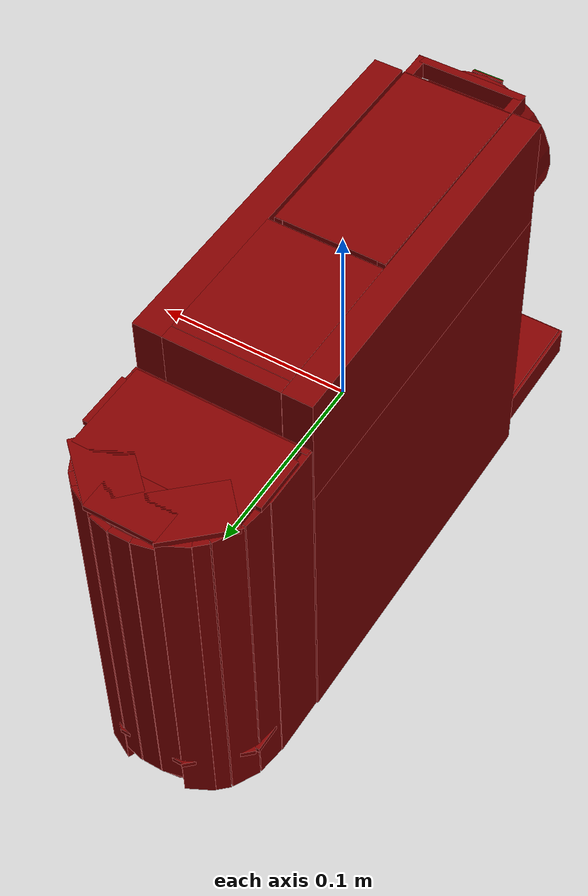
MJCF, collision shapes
<?xml version='1.0' encoding='UTF-8'?>
<mujoco model="model">
  <compiler angle="radian"/>
  <asset>
    <mesh file="visuals/Body001.obj" name="Body001_vis"/>
    <mesh file="visuals/Button001.obj" name="Button001_vis"/>
    <mesh file="visuals/Button002.obj" name="Button002_vis"/>
    <mesh file="visuals/Container001_Clear.obj" name="Container001_Clear_vis"/>
    <mesh file="visuals/Lid001.obj" name="Lid001_vis"/>
    <mesh file="visuals/Lid002.obj" name="Lid002_vis"/>
    <mesh file="visuals/Lid003.obj" name="Lid003_vis"/>
    <texture file="visuals/T_BC001.png" name="Body001_material" type="2d"/>
    <material name="Body001_material" rgba="1 1 1 1.0" texture="Body001_material" shininess="0.1" specular="2"/>
    <texture file="visuals/T_BC001.png" name="Button001_material" type="2d"/>
    <material name="Button001_material" rgba="1 1 1 1.0" texture="Button001_material" shininess="-0.9999998807907104" specular="0.7"/>
    <texture file="visuals/T_BC001.png" name="Button002_material" type="2d"/>
    <material name="Button002_material" rgba="1 1 1 1.0" texture="Button002_material" shininess="-0.9999998807907104" specular="0.7"/>
    <texture file="visuals/T_BC001.png" name="Container001_Clear_material" type="2d"/>
    <material name="Container001_Clear_material" rgba="1 1 1 0.06721784174442291" texture="Container001_Clear_material" shininess="0.5" specular="0.7"/>
    <texture file="visuals/T_BC001.png" name="Lid002_material" type="2d"/>
    <material name="Lid002_material" rgba="1 1 1 1.0" texture="Lid002_material" shininess="-0.9999998807907104" specular="0.7"/>
    <texture file="visuals/T_BC001.png" name="Lid001_material" type="2d"/>
    <material name="Lid001_material" rgba="1 1 1 1.0" texture="Lid001_material" shininess="-0.9999998807907104" specular="0.7"/>
    <texture file="visuals/T_BC001.png" name="Lid003_material" type="2d"/>
    <material name="Lid003_material" rgba="1 1 1 1.0" texture="Lid003_material" shininess="-0.9999998807907104" specular="0.7"/>
  </asset>
  <default>
    <default class="visual">
      <geom conaffinity="0" contype="0" group="1" type="mesh"/>
    </default>
    <default class="collision">
      <geom group="0" rgba="0.5 0 0 0.5"/>
    </default>
    <default class="spawn">
      <geom group="0" rgba="1 1 1 0.5" contype="0" conaffinity="0"/>
      <site group="0" rgba="1 1 1 0.5"/>
    </default>
    <default class="region">
      <geom group="1" conaffinity="0" contype="0" rgba="0 1 0 0"/>
    </default>
  </default>
  <worldbody>
    <body>
      <body name="object">
        <geom class="collision" type="box" pos="-0.00011250562965869904 -0.13045035302639008 0.032257333397865295" size="0.007772875018417835 0.0002824229886755347 0.007679379545152187" quat="1.0 0.0 0.0 0.0" name="start_button_2" rgba="0.0 0.5 0 0.5"/>
        <geom class="collision" type="box" pos="0.00012830746709369123 -0.1310804784297943 0.0891018807888031" size="0.007596283685415983 0.00023092639457900077 0.0075049130246043205" quat="1.0 0.0 0.0 0.0" name="start_button_1" rgba="0.0 0.5 0 0.5"/>
        <site type="cylinder" rgba="0.8 0.5 0.25 1" size="0.001894163666293025 0.06569229811429977" pos="-0.00023108282766770571 -0.11918017268180847 -0.04242556542158127" name="coffee_liquid"/>
        <site rgba="0 0 0 0" size="0.009999999776482582 0.009999999776482582" pos="1.6649686074288184e-09 -0.11896711587905884 -0.09013772755861282" name="receptacle_place_site"/>
        <geom mesh="Body001_vis" type="mesh" solimp="0.998 0.998 0.001" solref="0.001 1" density="100" friction="0.95 0.3 0.1" class="visual" material="Body001_material"/>
        <geom class="collision" type="box" pos="-6.7383816713117994e-06 0.013212434016168118 -0.09631945937871933" size="0.03704838454723358 0.11256401240825653 0.01269249152392149" quat="1.0 0.0 0.0 0.0"/>
        <geom class="collision" type="box" pos="-0.035784218460321426 -0.002858503954485059 0.07966650277376175" size="0.007261582650244236 0.09649308770895004 0.029945319518446922" quat="1.0 0.0 0.0 0.0"/>
        <geom class="collision" type="box" pos="0.03589842841029167 -0.002858503954485059 0.07966650277376175" size="0.007261582650244236 0.09649308770895004 0.029945319518446922" quat="1.0 0.0 0.0 0.0"/>
        <geom class="collision" type="box" pos="0.00018896185792982578 0.05042414367198944 0.10776890069246292" size="0.028582703322172165 0.036129746586084366 0.0018429192714393139" quat="1.0 0.0 0.0 0.0"/>
        <geom class="collision" type="box" pos="0.00018896185792982578 0.09015997499227524 0.07966650277376175" size="0.028582703322172165 0.0034746075980365276 0.029945319518446922" quat="1.0 0.0 0.0 0.0"/>
        <geom class="collision" type="box" pos="0.00018896185792982578 -0.09109693020582199 0.06896322220563889" size="0.028582703322172165 0.00837037805467844 0.029945319518446922" quat="1.0 0.0 0.0 0.0"/>
        <geom class="collision" type="box" pos="0.00018896185792982578 -0.021079866215586662 0.09805485606193542" size="0.028582703322172165 0.01735948584973812 0.0008536906680092216" quat="1.0 0.0 0.0 0.0"/>
        <geom class="collision" type="box" pos="0.00043494501733221114 -0.04165946692228317 0.08449152857065201" size="0.030188720673322678 0.004576671402901411 0.0144170131534338" quat="1.0 0.0 0.0 0.0"/>
        <geom class="collision" type="box" pos="0.02531231753528118 -0.06471151858568192 0.0844915360212326" size="0.0033649865072220564 0.02186001092195511 0.0144170131534338" quat="1.0 0.0 0.0 0.0"/>
        <geom class="collision" type="box" pos="-0.025028755888342857 -0.06471151858568192 0.0844915360212326" size="0.0033649865072220564 0.02186001092195511 0.0144170131534338" quat="1.0 0.0 0.0 0.0"/>
        <geom class="collision" type="box" pos="0.00018896185792982578 -0.06487138569355011 0.07503701001405716" size="0.028582703322172165 0.01735948584973812 0.0021653431467711926" quat="1.0 0.0 0.0 0.0"/>
        <geom class="collision" type="box" pos="-0.0369594544172287 -0.131109818816185 -0.10067015141248703" size="0.001575507689267397 0.03661617264151573 0.008175674825906754" quat="1.0 0.0 0.0 0.0"/>
        <geom class="collision" type="box" pos="-7.188247400335968e-05 -0.1662924438714981 -0.10067015141248703" size="0.03661617264151573 0.0015754962805658579 0.008175674825906754" quat="1.0 0.0 0.0 0.0"/>
        <geom class="collision" type="box" pos="0.036931224167346954 -0.131109818816185 -0.10067015141248703" size="0.001575507689267397 0.03661617264151573 0.008175674825906754" quat="1.0 0.0 0.0 0.0"/>
        <geom class="collision" type="box" pos="-7.188247400335968e-05 -0.10134870558977127 -0.10067015141248703" size="0.03661617264151573 0.004783143755048513 0.008175674825906754" quat="1.0 0.0 0.0 0.0"/>
        <geom class="collision" type="box" pos="0.0004369621747173369 -0.1366347223520279 -0.1070469543337822" size="0.03760829567909241 0.03101249225437641 0.0021653431467711926" quat="1.0 0.0 0.0 0.0"/>
        <geom class="collision" type="cylinder" pos="2.1036454800338333e-09 -0.11345046013593674 0.061034876853227615" size="0.037145618349313736 0.014436264522373676" quat="0.7071072459220886 0.7071062922477722 0.0 0.0"/>
        <geom class="collision" type="box" pos="1.6649686074288184e-09 -0.002858503954485059 -0.029128266498446465" size="0.04316001012921333 0.09649308770895004 0.07988367974758148" quat="1.0 0.0 0.0 0.0"/>
        <geom class="collision" type="cylinder" pos="-0.020290406420826912 0.00079167983494699 0.0965651199221611" size="0.0032979431562125683 0.002037288621068001" quat="0.7071068286895752 -0.0 0.7071067690849304 0.0"/>
        <geom class="collision" type="cylinder" pos="2.2000843369340828e-09 0.12526997923851013 -0.09636811167001724" size="0.03706943243741989 0.012594180181622505" quat="1.0 0.0 0.0 0.0"/>
        <geom class="collision" type="cylinder" pos="1.9255370716564357e-05 -0.11916482448577881 0.035748109221458435" size="0.004233709070831537 0.001438384409993887" quat="1.0 0.0 0.0 0.0"/>
        <geom class="collision" type="cylinder" pos="0.02024255134165287 0.00079167983494699 0.0965651199221611" size="0.0032979431562125683 0.002037288621068001" quat="0.7071068286895752 -0.0 0.7071067690849304 0.0"/>
        <geom class="collision" type="box" pos="-0.0003360956907272339 0.006950207985937595 0.08091382682323456" size="0.028582703322172165 0.013183741830289364 0.0004413881979417056" quat="1.0 0.0 0.0 0.0"/>
        <geom class="collision" type="box" pos="-0.0003360956907272339 0.020683657377958298 0.09346339106559753" size="0.028582703322172165 0.0005870671011507511 0.01283323485404253" quat="1.0 0.0 0.0 0.0"/>
        <body name="Button001">
          <joint axis="0.0 1.0 0.0" pos="0.00017364509403705597 -0.12865860760211945 0.08878087252378464" limited="true" name="Button001_joint" range="0.0 0.002" type="slide" damping="1" frictionloss="1" armature=".01" stiffness="0.05"/>
          <geom mesh="Button001_vis" type="mesh" solimp="0.998 0.998 0.001" solref="0.001 1" density="100" friction="0.95 0.3 0.1" class="visual" material="Button001_material"/>
          <geom class="collision" type="box" pos="7.314980030059814e-05 -0.1301015466451645 0.08895906805992126" size="0.007856844924390316 0.0006210544379428029 0.007762340363115072" quat="1.0 0.0 0.0 0.0"/>
        </body>
        <body name="Button002">
          <joint axis="0.0 1.0 0.0" pos="7.50962644815445e-05 -0.12855546176433563 0.03215152770280838" limited="true" name="Button002_joint" range="0.0 0.002" type="slide" damping="1" frictionloss="1" armature=".01" stiffness="0.05"/>
          <geom mesh="Button002_vis" type="mesh" solimp="0.998 0.998 0.001" solref="0.001 1" density="100" friction="0.95 0.3 0.1" class="visual" material="Button002_material"/>
          <geom class="collision" type="box" pos="-0.00011250562965869904 -0.12941353023052216 0.032000329345464706" size="0.008150214329361916 0.0005056349327787757 0.008052179589867592" quat="1.0 0.0 0.0 0.0"/>
        </body>
        <body name="Container001_Clear">
          <joint axis="0.0 0.0 1.0" pos="1.0913936421275139e-09 0.13135002553462982 -0.009369749575853348" limited="true" name="Container001_Clear_joint" range="0.0 0.1" type="slide" damping="1" frictionloss="1" armature=".01" stiffness="0.05"/>
          <geom mesh="Container001_Clear_vis" type="mesh" solimp="0.998 0.998 0.001" solref="0.001 1" density="100" friction="0.95 0.3 0.1" class="visual" material="Container001_Clear_material"/>
          <geom class="collision" type="box" pos="0.00017196944099850953 0.09628544747829437 0.0008537853136658669" size="0.04272306337952614 0.0014309616526588798 0.0832444578409195" quat="1.0 0.0 0.0 0.0"/>
          <geom class="collision" type="box" pos="0.010150482878088951 0.16548678278923035 -0.007804183289408684" size="0.0015038554556667805 0.005101977847516537 0.08827603608369827" quat="0.7826082110404968 0.0 0.0 0.6225146055221558"/>
          <geom class="collision" type="box" pos="-0.010126282460987568 0.16534848511219025 -0.007804183289408684" size="0.0015038554556667805 0.005101977847516537 0.08827603608369827" quat="0.622514545917511 0.0 0.0 0.7826082110404968"/>
          <geom class="collision" type="box" pos="2.65991548076272e-05 0.16639617085456848 -0.007804183289408684" size="0.005101977847516537 0.001503853825852275 0.08827603608369827" quat="1.0 0.0 0.0 0.0"/>
          <geom class="collision" type="box" pos="-0.041852839291095734 0.11019381880760193 -0.011125539429485798" size="0.0015038554556667805 0.015163935720920563 0.09492111206054688" quat="1.0 0.0 0.0 0.0"/>
          <geom class="collision" type="box" pos="0.04070986434817314 0.13252796232700348 -0.011125539429485798" size="0.0015038554556667805 0.0072593907825648785 0.09492111206054688" quat="0.9975640773773193 0.0 0.0 0.06975649297237396"/>
          <geom class="collision" type="box" pos="0.04159776121377945 0.11019381880760193 -0.011125539429485798" size="0.0015038554556667805 0.015163935720920563 0.09492111206054688" quat="1.0 0.0 0.0 0.0"/>
          <geom class="collision" type="box" pos="0.030225979164242744 0.15551364421844482 -0.011125539429485798" size="0.0015038556884974241 0.0037185614928603172 0.09492111206054688" quat="0.9170600771903992 0.0 0.0 0.3987490236759186"/>
          <geom class="collision" type="box" pos="0.03636978939175606 0.14637431502342224 -0.011125539429485798" size="0.0015038553392514586 0.007259390316903591 0.09492111206054688" quat="0.9702957272529602 0.0 0.0 0.24192193150520325"/>
          <geom class="collision" type="box" pos="0.021735135465860367 0.16120615601539612 -0.011125539429485798" size="0.0015038554556667805 0.0072593907825648785 0.09492111206054688" quat="0.8526402115821838 0.0 0.0 0.5224984884262085"/>
          <geom class="collision" type="box" pos="-0.02159833535552025 0.16120615601539612 -0.011125541292130947" size="0.0015038554556667805 0.0072593907825648785 0.09492111206054688" quat="3.6930038049831637e-07 0.8526402115821838 -0.5224984884262085 -2.263076623876259e-07"/>
          <geom class="collision" type="box" pos="-0.03623298928141594 0.14637430012226105 -0.011125541292130947" size="0.0015038554556667805 0.0072593907825648785 0.09492111206054688" quat="4.202600791813893e-07 0.9702957272529602 -0.24192193150520325 -1.0478261458501947e-07"/>
          <geom class="collision" type="box" pos="-0.030089179053902626 0.15551362931728363 -0.011125537566840649" size="0.0015038556884974241 0.0037185614928603172 0.09492111206054688" quat="3.972023421283666e-07 0.9170600771903992 -0.3987490236759186 -1.7270851060402492e-07"/>
          <geom class="collision" type="box" pos="-0.040573060512542725 0.13252794742584229 -0.011125541292130947" size="0.0015038554556667805 0.0072593907825648785 0.09492111206054688" quat="4.3207069211348426e-07 0.9975640773773193 -0.06975649297237396 -3.021339978204196e-08"/>
          <geom class="collision" type="box" pos="0.021230176091194153 0.14573070406913757 -0.08200275152921677" size="0.017115913331508636 0.012401998043060303 0.0013986736303195357" quat="0.9304175972938538 0.0 0.0 -0.36650121212005615"/>
          <geom class="collision" type="box" pos="0.0001037812908180058 0.1542140692472458 -0.08200275152921677" size="0.017115911468863487 0.012401997111737728 0.0013986736303195357" quat="1.0 0.0 0.0 0.0"/>
          <geom class="collision" type="box" pos="-7.811507384758443e-05 0.120323047041893 -0.08200275152921677" size="0.042587652802467346 0.022524645552039146 0.0013986736303195357" quat="1.0 0.0 0.0 0.0"/>
          <geom class="collision" type="box" pos="-0.02086382731795311 0.14668342471122742 -0.08200275152921677" size="0.017115913331508636 0.012401998043060303 0.0013986736303195357" quat="0.9304175972938538 0.0 0.0 0.36650121212005615"/>
          <body name="Lid002">
            <joint axis="1.0 0.0 0.0" pos="2.16649684858794e-08 0.10170003026723862 0.0838976725935936" limited="true" name="Lid002_joint" range="0.0 1.5707963267948966" type="hinge" damping="0.1" frictionloss="-0.1" armature="0.01" stiffness="1"/>
            <geom mesh="Lid002_vis" type="mesh" solimp="0.998 0.998 0.001" solref="0.001 1" density="100" friction="0.95 0.3 0.1" class="visual" material="Lid002_material"/>
            <geom class="collision" type="box" pos="-0.02086382731795311 0.14668342471122742 0.08611837774515152" size="0.017115913331508636 0.012401998043060303 0.0013986736303195357" quat="0.9304175972938538 0.0 0.0 0.36650121212005615"/>
            <geom class="collision" type="box" pos="-4.2787381971720606e-05 0.11798099428415298 0.08601843565702438" size="0.042872071266174316 0.013619652017951012 0.0013986736303195357" quat="1.0 0.0 0.0 0.0"/>
            <geom class="collision" type="box" pos="0.00010378224396845326 0.120323047041893 0.08611837774515152" size="0.039862096309661865 0.022524645552039146 0.0013986736303195357" quat="1.0 0.0 0.0 0.0"/>
            <geom class="collision" type="box" pos="0.0001037812908180058 0.1542140692472458 0.08611837774515152" size="0.017115911468863487 0.012401997111737728 0.0013986736303195357" quat="1.0 0.0 0.0 0.0"/>
            <geom class="collision" type="box" pos="0.021230176091194153 0.14573070406913757 0.08611837774515152" size="0.017115913331508636 0.012401998043060303 0.0013986736303195357" quat="0.9304175972938538 0.0 0.0 -0.36650121212005615"/>
          </body>
        </body>
        <body name="Lid001">
          <joint axis="-1.0 0.0 0.0" pos="3.166496753692627e-08 0.0008478821255266666 0.09733451902866364" limited="true" name="Lid001_joint" range="0.0 1.5707963267948966" type="hinge" damping="1" frictionloss="1" armature=".01" stiffness="0.05"/>
          <geom mesh="Lid001_vis" type="mesh" solimp="0.998 0.998 0.001" solref="0.001 1" density="100" friction="0.95 0.3 0.1" class="visual" material="Lid001_material"/>
          <geom class="collision" type="box" pos="0.00016425829380750656 0.012985538691282272 0.10451953113079071" size="0.027632933109998703 0.001506718574091792 0.0018084601033478975" quat="1.0 0.0 0.0 0.0"/>
          <geom class="collision" type="box" pos="-6.058838334865868e-05 -0.04409855604171753 0.10581117123365402" size="0.02738378196954727 0.055244848132133484 0.0030855827499181032" quat="1.0 0.0 0.0 0.0"/>
          <geom class="collision" type="box" pos="2.7053132725995965e-05 0.0007553834584541619 0.09856726974248886" size="0.01808301918208599 0.0031046420335769653 0.004443162586539984" quat="1.0 0.0 0.0 0.0"/>
          <geom class="collision" type="box" pos="0.025516390800476074 -0.05111943930387497 0.10447313636541367" size="0.0020974460057914257 0.06238915026187897 0.004319113679230213" quat="1.0 0.0 0.0 0.0"/>
          <geom class="collision" type="box" pos="-0.025484856218099594 -0.05111943930387497 0.10447313636541367" size="0.0020974460057914257 0.06238915026187897 0.004319113679230213" quat="1.0 0.0 0.0 0.0"/>
          <geom class="collision" type="box" pos="0.00016425829380750656 -0.11167579889297485 0.10444233566522598" size="0.027632933109998703 0.002097453223541379 0.004349914379417896" quat="1.0 0.0 0.0 0.0"/>
          <geom class="collision" type="box" pos="0.00016425829380750656 -0.09803024679422379 0.10414231568574905" size="0.027632933109998703 0.0018178370082750916 0.004649937152862549" quat="1.0 0.0 0.0 0.0"/>
        </body>
        <body name="Lid003">
          <joint axis="0.0 0.0 1.0" pos="5.919719114899635e-08 -0.1338498890399933 -0.09206722676753998" limited="true" name="Lid003_joint" range="0.0 0.08" type="slide" damping="1" frictionloss="1" armature=".01" stiffness="0.05"/>
          <geom mesh="Lid003_vis" type="mesh" solimp="0.998 0.998 0.001" solref="0.001 1" density="100" friction="0.95 0.3 0.1" class="visual" material="Lid003_material"/>
          <geom class="collision" type="box" pos="-0.0001960485242307186 -0.13392257690429688 -0.09156437963247299" size="0.036975279450416565 0.032280534505844116 0.000609037873800844" quat="1.0 0.0 0.0 0.0"/>
        </body>
        <geom class="region" name="reg_main" type="box" pos="9.313225746154785e-10 0.0 0.0" size="0.04300016909837723 0.1678500473499298 0.10930240154266357"/>
      </body>
    </body>
  </worldbody>
  <actuator>
    <motor name="Button001_joint_actuator" joint="Button001_joint" gear="0.5"/>
    <motor name="Button002_joint_actuator" joint="Button002_joint" gear="0.5"/>
    <motor name="Container001_Clear_joint_actuator" joint="Container001_Clear_joint" gear="10"/>
    <motor name="Lid001_joint_actuator" joint="Lid001_joint" gear="10"/>
    <motor name="Lid003_joint_actuator" joint="Lid003_joint" gear="10"/>
    <motor name="Lid002_joint_actuator" joint="Lid002_joint" gear="50"/>
  </actuator>
</mujoco>
